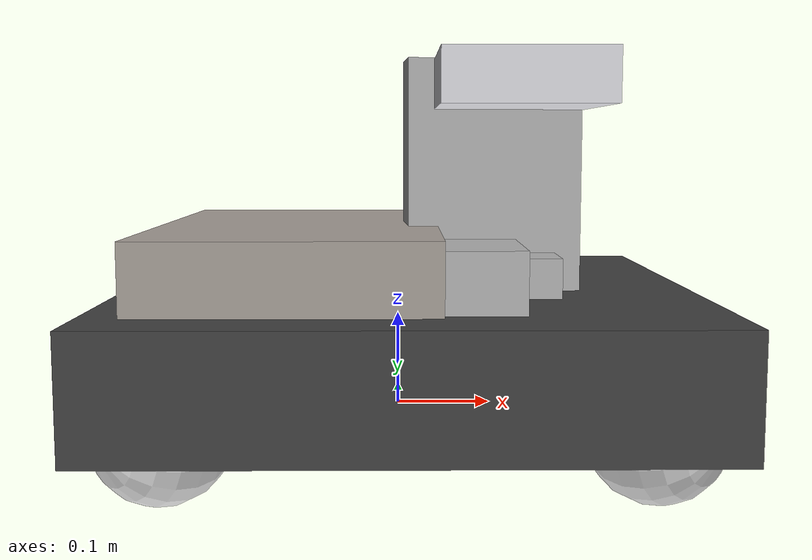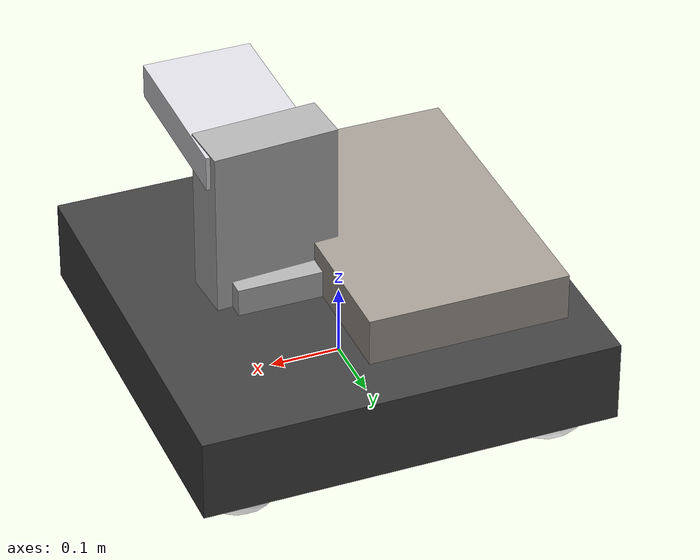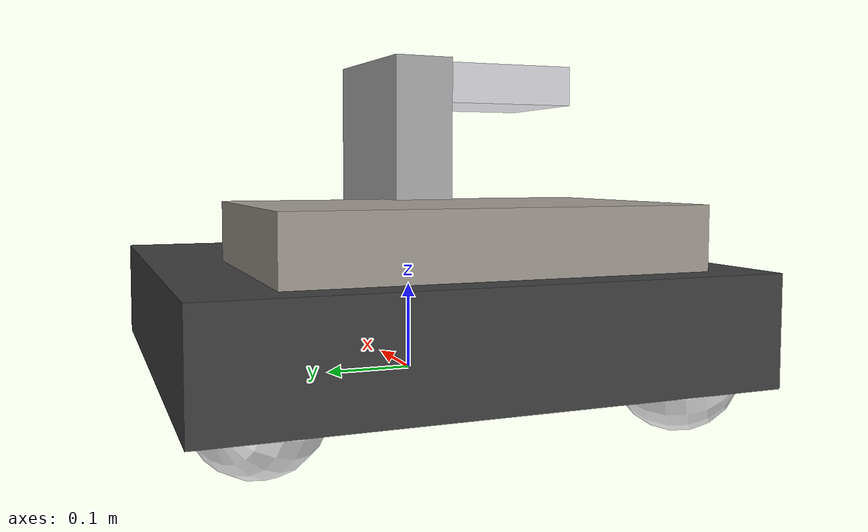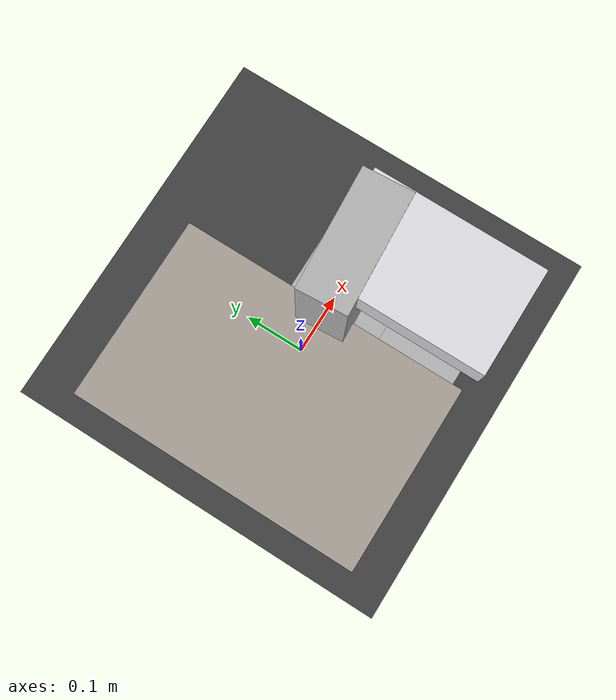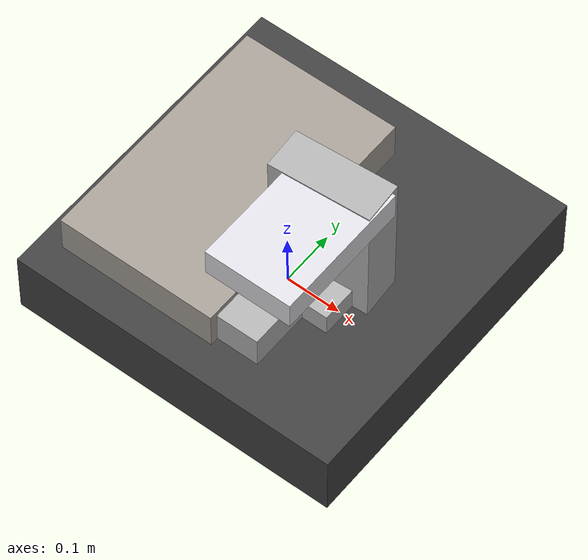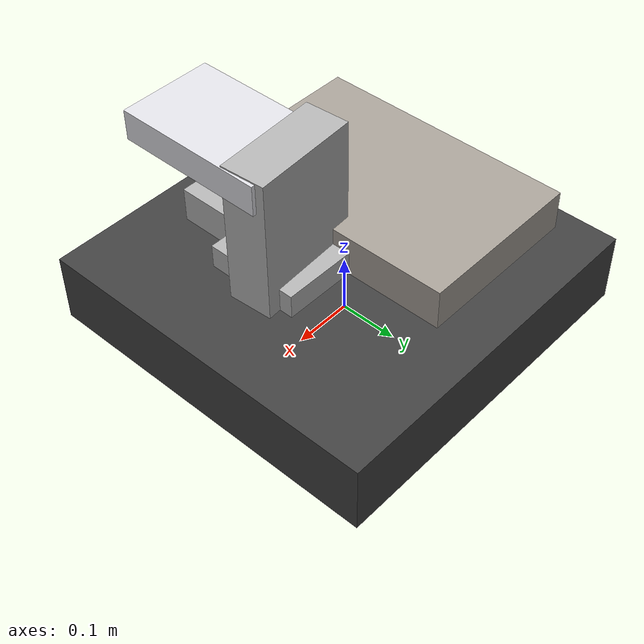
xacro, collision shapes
<?xml version="1.0"?>
<robot xmlns:xacro="http://www.ros.org/wiki/xacro" name="sentry">
  <xacro:arg name="use_sim" default="true"/>
  <xacro:arg name="use_gimbal_control" default="false"/>
  <xacro:arg name="use_planar_controller" default="false"/>

  <xacro:property name="mesh_prefix" value="package://gazebo_simulation/meshes/sentry2026"/>

  <material name="dark_gray">
    <color rgba="0.25098039 0.25098039 0.25098039 1"/>
  </material>
  <material name="light_gray">
    <color rgba="0.69803922 0.69803922 0.69803922 1"/>
  </material>
  <material name="wheel_front">
    <color rgba="0.92941176 0.92941176 0.92941176 1"/>
  </material>
  <material name="wheel_rear">
    <color rgba="1 1 1 1"/>
  </material>
  <material name="warm_gray">
    <color rgba="0.64705882 0.61960784 0.58823529 1"/>
  </material>
  <material name="upper_gray">
    <color rgba="0.86666667 0.86666667 0.89019608 1"/>
  </material>

  <link name="chassis_link">
    <visual>
      <geometry><mesh filename="${mesh_prefix}/base_link.STL"/></geometry>
      <material name="dark_gray"/>
    </visual>
    <collision name="body_collision">
      <origin xyz="0.0105748 0.0007029 0.071449"/>
      <geometry><box size="0.594 0.594 0.118672"/></geometry>
    </collision>
    <inertial>
      <origin xyz="-0.0188632 0.0318286 0.0620274"/>
      <mass value="4.2677209"/>
      <inertia ixx="0.0259148" ixy="-0.0001191" ixz="0.0005407"
               iyy="0.0250381" iyz="-0.0000228" izz="0.0481419"/>
    </inertial>
  </link>

  <!-- v1.3 wheels: visual mesh, spherical ground contact, and passive continuous joint. -->
  <xacro:macro name="wheel" params="name mesh material mass_origin joint_origin joint_rpy">
    <link name="${name}_link">
      <visual>
        <geometry><mesh filename="${mesh_prefix}/${mesh}"/></geometry>
        <material name="${material}"/>
      </visual>
      <collision>
        <origin xyz="0.02 0 0" rpy="0 1.5707963 0"/>
        <geometry><sphere radius="0.065985"/></geometry>
      </collision>
      <inertial>
        <origin xyz="${mass_origin}"/>
        <mass value="0.3453588"/>
        <inertia ixx="0.0003098" ixy="-0.0000002" ixz="0"
                 iyy="0.0001729" iyz="0" izz="0.0001722"/>
      </inertial>
    </link>
    <joint name="${name}_joint" type="continuous">
      <parent link="chassis_link"/>
      <child link="${name}_link"/>
      <origin xyz="${joint_origin}" rpy="${joint_rpy}"/>
      <axis xyz="-1 0 0"/>
    </joint>
    <gazebo reference="${name}_link">
      <gravity>true</gravity>
      <mu1>0.05</mu1>
      <mu2>0.05</mu2>
    </gazebo>
  </xacro:macro>

  <xacro:wheel name="wheel_fl" mesh="wheel_fl_link.STL" material="wheel_front"
    mass_origin="0.0081125 -0.0000928 -0.0000122"
    joint_origin="0.2197598 0.2098879 0.025" joint_rpy="1.5707963 0 0.7853982"/>
  <xacro:wheel name="wheel_fr" mesh="wheel_fr_link.STL" material="wheel_front"
    mass_origin="0.0081125 -0.0000928 -0.0000122"
    joint_origin="0.2197598 -0.2084821 0.025" joint_rpy="1.5707963 0 -0.7853982"/>
  <xacro:wheel name="wheel_rl" mesh="wheel_rl_link.STL" material="wheel_rear"
    mass_origin="0.0081125 -0.0000928 -0.0000122"
    joint_origin="-0.1986102 0.2098879 0.025" joint_rpy="1.5707963 0 2.3561945"/>
  <xacro:wheel name="wheel_rr" mesh="wheel_rr_link.STL" material="wheel_rear"
    mass_origin="0.0081125 -0.0000928 -0.0000122"
    joint_origin="-0.1986102 -0.2084821 0.025" joint_rpy="1.5707963 0 -2.3561945"/>

  <link name="gimbal_yaw_big_link">
    <visual>
      <geometry><mesh filename="${mesh_prefix}/gimbal_yaw_big_link.STL"/></geometry>
      <material name="warm_gray"/>
    </visual>
    <collision>
      <origin xyz="-0.113232 -0.01231 0.11775"/>
      <geometry><box size="0.288505 0.44902 0.1035"/></geometry>
    </collision>
    <inertial>
      <origin xyz="-0.1358475 0.0049467 0.1275701"/>
      <mass value="1.694088"/>
      <inertia ixx="0.0218449" ixy="0.0004953" ixz="0.000041"
               iyy="0.021004" iyz="0.0000236" izz="0.0245309"/>
    </inertial>
  </link>

  <link name="gimbal_yaw_small_link">
    <visual>
      <geometry><mesh filename="${mesh_prefix}/gimbal_yaw_small_link.STL"/></geometry>
      <material name="light_gray"/>
    </visual>
    <collision>
      <origin xyz="0.0000005 -0.0109641 0.0425"/>
      <geometry><box size="0.1379722 0.1599005 0.057"/></geometry>
    </collision>
    <inertial>
      <origin xyz="-0.0075279 -0.0307755 0.0341618"/>
      <mass value="0.2475866"/>
      <inertia ixx="0.0001335" ixy="-0.0000035" ixz="-0.0000013"
               iyy="0.0001488" iyz="0.0000026" izz="0.0002131"/>
    </inertial>
  </link>

  <link name="gimbal_pitch_lower_link">
    <visual>
      <geometry><mesh filename="${mesh_prefix}/gimbal_pitch_lower_link.STL"/></geometry>
      <material name="light_gray"/>
    </visual>
    <collision>
      <origin xyz="0.046889 0.0069809 0.110322" rpy="1.2680269 1.5707963 -0.2371063"/>
      <geometry><box size="0.246271 0.179873 0.07439"/></geometry>
    </collision>
    <inertial>
      <origin xyz="0.0437227 0.0121797 0.1256049"/>
      <mass value="0.4473433"/>
      <inertia ixx="0.0009368" ixy="-0.0000055" ixz="-0.0000015"
               iyy="0.0010207" iyz="-0.0000585" izz="0.0002177"/>
    </inertial>
  </link>

  <link name="gimbal_pitch_upper_link">
    <visual>
      <geometry><mesh filename="${mesh_prefix}/gimbal_pitch_upper_link.STL"/></geometry>
      <material name="upper_gray"/>
    </visual>
    <collision>
      <origin xyz="-0.0388241 -0.0976083 0.0012"/>
      <geometry><box size="0.1555171 0.2498641 0.05"/></geometry>
    </collision>
    <inertial>
      <origin xyz="-0.027817 -0.1111812 0.0077809"/>
      <mass value="0.6340389"/>
      <inertia ixx="0.0006559" ixy="0.0001031" ixz="0.0000008"
               iyy="0.0003513" iyz="0.0000024" izz="0.0009083"/>
    </inertial>
  </link>

  <joint name="gimbal_yaw_big_joint" type="continuous">
    <parent link="chassis_link"/>
    <child link="gimbal_yaw_big_link"/>
    <origin xyz="0.0105748 0.0007029 0.03"/>
    <axis xyz="0 0 1"/>
    <!-- Required by ros2_control; continuous joints remain angle-unbounded. -->
    <!-- Extra speed margin lets big yaw catch a 3 rad/s spinning chassis. -->
    <limit effort="100" velocity="5"/>
    <dynamics damping="0.05" friction="0.0"/>
  </joint>
  <joint name="gimbal_yaw_small_joint" type="revolute">
    <parent link="gimbal_yaw_big_link"/>
    <child link="gimbal_yaw_small_link"/>
    <origin xyz="0.084 -0.024 0.07"/>
    <axis xyz="0 0 -1"/>
    <limit lower="-3.14" upper="0" effort="100" velocity="3"/>
    <dynamics damping="0.05" friction="0.0"/>
  </joint>
  <joint name="gimbal_pitch_lower_joint" type="revolute">
    <parent link="gimbal_yaw_small_link"/>
    <child link="gimbal_pitch_lower_link"/>
    <origin xyz="-0.0429366 -0.0023341 0.038"/>
    <axis xyz="-0.9985257 -0.0542812 0"/>
    <limit lower="0" upper="1.41" effort="100" velocity="3"/>
    <dynamics damping="0.05" friction="0.0"/>
  </joint>
  <joint name="gimbal_pitch_upper_joint" type="revolute">
    <parent link="gimbal_pitch_lower_link"/>
    <child link="gimbal_pitch_upper_link"/>
    <origin xyz="0.1021791 0.0086869 0.2049761"/>
    <axis xyz="0.9985257 0.0542812 0"/>
    <limit lower="-0.7" upper="1.41" effort="100" velocity="3"/>
    <dynamics damping="0.05" friction="0.0"/>
  </joint>

  <!-- MID-360 mount copied from simple_livox.urdf.xacro. -->
  <link name="mid360_link">
    <visual>
      <geometry>
        <mesh filename="package://gazebo_simulation/models/mid360/meshes/mid360.dae"/>
      </geometry>
      <material name="light_gray"/>
    </visual>
    <collision name="mid360_collision">
      <geometry><box size="0.08 0.12 0.08"/></geometry>
    </collision>
    <inertial>
      <mass value="1.0"/>
      <inertia ixx="0.1" ixy="0" ixz="0"
               iyy="0.1" iyz="0" izz="0.1"/>
    </inertial>
  </link>

  <joint name="mid360_mount_joint" type="fixed">
    <parent link="gimbal_yaw_big_link"/>
    <child link="mid360_link"/>
    <origin xyz="0.0668 -0.1623 0.1195" rpy="0 0 0"/>
  </joint>

  <!-- Sensor parameters are taken from models/mid360/model.sdf. -->
  <gazebo reference="mid360_link">
    <gravity>false</gravity>
    <sensor name="mid360_lidar" type="gpu_lidar">
      <ignition_frame_id>mid360_link</ignition_frame_id>
      <pose>0 0 0.03 0 0 0</pose>
      <topic>/model/sentry/mid360/scan</topic>
      <always_on>true</always_on>
      <visualize>true</visualize>
      <update_rate>10.0</update_rate>
      <ray>
        <scan>
          <horizontal>
            <samples>1500</samples>
            <resolution>1</resolution>
            <min_angle>0</min_angle>
            <max_angle>6.2831852</max_angle>
          </horizontal>
          <vertical>
            <samples>32</samples>
            <resolution>1</resolution>
            <min_angle>-0.12217304764</min_angle>
            <max_angle>0.90757121104</max_angle>
          </vertical>
        </scan>
        <range>
          <min>0.15</min>
          <max>15.0</max>
          <resolution>0.01</resolution>
        </range>
      </ray>
      <noise>
        <type>gaussian</type>
        <mean>0.0</mean>
        <stddev>0.01</stddev>
      </noise>
    </sensor>
    <sensor name="mid360_imu" type="imu">
      <ignition_frame_id>mid360_link</ignition_frame_id>
      <topic>/model/sentry/mid360/imu</topic>
      <always_on>true</always_on>
      <visualize>true</visualize>
      <update_rate>200</update_rate>
    </sensor>
  </gazebo>

  <gazebo reference="chassis_link">
    <gravity>true</gravity>
  </gazebo>
  <gazebo reference="gimbal_yaw_big_link"><gravity>true</gravity></gazebo>
  <gazebo reference="gimbal_yaw_small_link"><gravity>true</gravity></gazebo>
  <gazebo reference="gimbal_pitch_lower_link"><gravity>true</gravity></gazebo>
  <gazebo reference="gimbal_pitch_upper_link"><gravity>true</gravity></gazebo>

  <xacro:if value="$(arg use_sim)">
    <xacro:if value="$(arg use_gimbal_control)">
    <ros2_control name="GazeboSimSystem" type="system">
      <hardware>
        <plugin>gz_ros2_control/GazeboSimSystem</plugin>
      </hardware>
      <!-- Passive v1.3 wheel joints: state only, no drivetrain command interface. -->
      <joint name="wheel_fl_joint">
        <state_interface name="position"><param name="initial_value">0</param></state_interface>
        <state_interface name="velocity"/>
      </joint>
      <joint name="wheel_fr_joint">
        <state_interface name="position"><param name="initial_value">0</param></state_interface>
        <state_interface name="velocity"/>
      </joint>
      <joint name="wheel_rl_joint">
        <state_interface name="position"><param name="initial_value">0</param></state_interface>
        <state_interface name="velocity"/>
      </joint>
      <joint name="wheel_rr_joint">
        <state_interface name="position"><param name="initial_value">0</param></state_interface>
        <state_interface name="velocity"/>
      </joint>
      <joint name="gimbal_yaw_big_joint">
        <command_interface name="effort"/>
        <state_interface name="position"><param name="initial_value">0</param></state_interface>
        <state_interface name="velocity"/>
      </joint>
      <joint name="gimbal_yaw_small_joint">
        <command_interface name="effort"/>
        <state_interface name="position"><param name="initial_value">0</param></state_interface>
        <state_interface name="velocity"/>
      </joint>
      <joint name="gimbal_pitch_lower_joint">
        <command_interface name="effort"/>
        <state_interface name="position"><param name="initial_value">0</param></state_interface>
        <state_interface name="velocity"/>
      </joint>
      <joint name="gimbal_pitch_upper_joint">
        <command_interface name="effort"/>
        <state_interface name="position"><param name="initial_value">0</param></state_interface>
        <state_interface name="velocity"/>
      </joint>
    </ros2_control>
    </xacro:if>

    <gazebo>
      <!-- Keep collisions against the world, but never collide links of this robot together. -->
      <self_collide>false</self_collide>
      <xacro:if value="$(arg use_planar_controller)">
      <plugin filename="libplanar_wrench_controller.so"
              name="sentry_simulation::PlanarWrenchController">
        <link_name>chassis_link</link_name>
        <topic>/model/sentry/cmd_vel</topic>
        <linear_gain_x>100.0</linear_gain_x>
        <linear_gain_y>100.0</linear_gain_y>
        <linear_integral_gain_x>20.0</linear_integral_gain_x>
        <linear_integral_gain_y>20.0</linear_integral_gain_y>
        <linear_derivative_gain_x>2.0</linear_derivative_gain_x>
        <linear_derivative_gain_y>2.0</linear_derivative_gain_y>
        <linear_integral_limit>2.0</linear_integral_limit>
        <angular_gain_z>2.5</angular_gain_z>
        <angular_integral_gain_z>0.5</angular_integral_gain_z>
        <angular_derivative_gain_z>0.05</angular_derivative_gain_z>
        <angular_integral_limit>2.0</angular_integral_limit>
        <heading_gain>6.0</heading_gain>
        <heading_integral_gain>0.5</heading_integral_gain>
        <heading_derivative_gain>1.5</heading_derivative_gain>
        <heading_integral_limit>1.0</heading_integral_limit>
        <heading_deadband>0.01</heading_deadband>
        <max_force>80.0</max_force>
        <max_torque>6.0</max_torque>
        <max_linear_speed>3.0</max_linear_speed>
        <max_angular_speed>4.0</max_angular_speed>
        <command_timeout>0.2</command_timeout>
        <support_slip_compliance>1.0</support_slip_compliance>
        <!-- Let contact and gravity follow terrain height and slope naturally. -->
        <vertical_gain>0.0</vertical_gain>
        <vertical_damping>0.0</vertical_damping>
        <tilt_gain>0.0</tilt_gain>
        <tilt_damping>0.0</tilt_damping>
        <max_vertical_force>250.0</max_vertical_force>
        <max_tilt_torque>30.0</max_tilt_torque>
      </plugin>
      </xacro:if>
      <xacro:if value="$(arg use_gimbal_control)">
        <plugin filename="libgz_ros2_control-system.so"
                name="gz_ros2_control::GazeboSimROS2ControlPlugin">
          <parameters>$(find gazebo_simulation)/config/sentry2026/controllers.yaml</parameters>
          <hold_joints>true</hold_joints>
        </plugin>
      </xacro:if>
      <plugin filename="gz-sim-odometry-publisher-system"
              name="gz::sim::systems::OdometryPublisher">
        <dimensions>2</dimensions>
        <odom_frame>odom</odom_frame>
        <robot_base_frame>chassis_link</robot_base_frame>
        <odom_publish_frequency>50</odom_publish_frequency>
        <odom_topic>/model/sentry/odometry</odom_topic>
        <tf_topic>/model/sentry/pose</tf_topic>
      </plugin>
      <plugin filename="gz-sim-joint-state-publisher-system"
              name="gz::sim::systems::JointStatePublisher">
        <topic>/world/default/model/sentry/joint_state</topic>
      </plugin>
    </gazebo>
  </xacro:if>
</robot>
